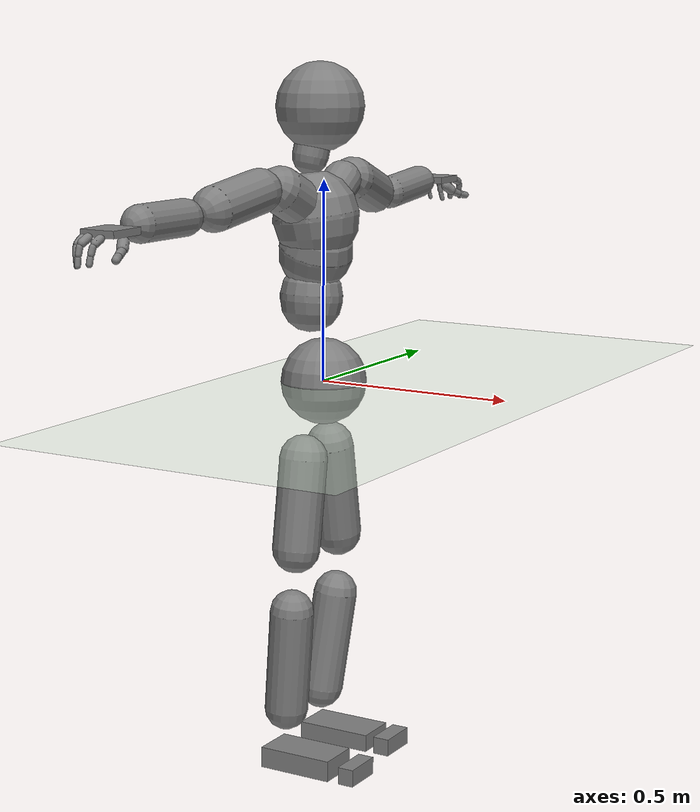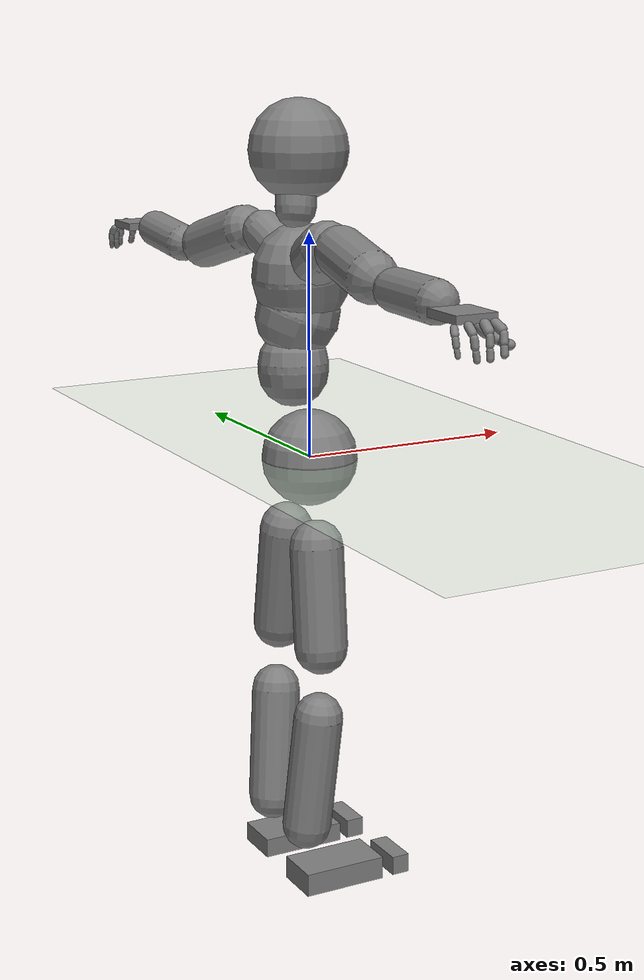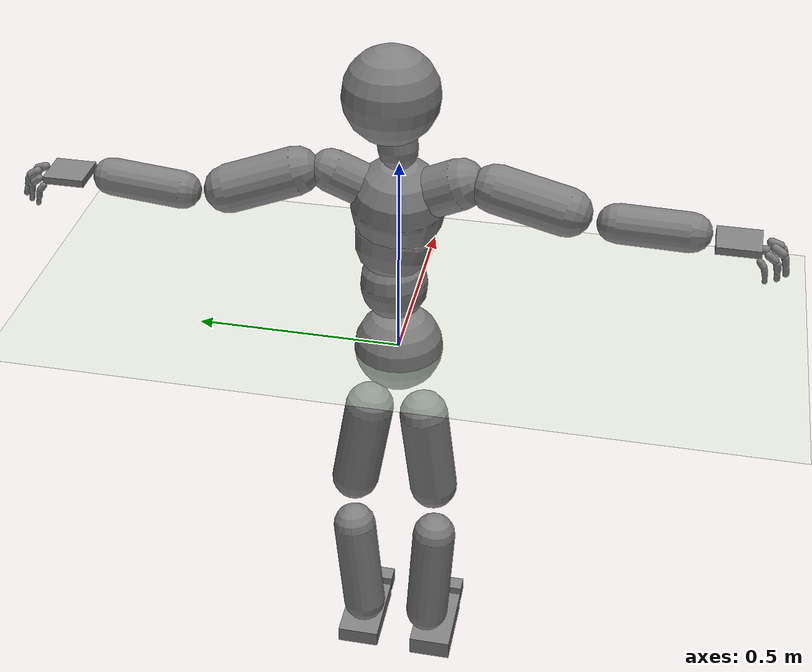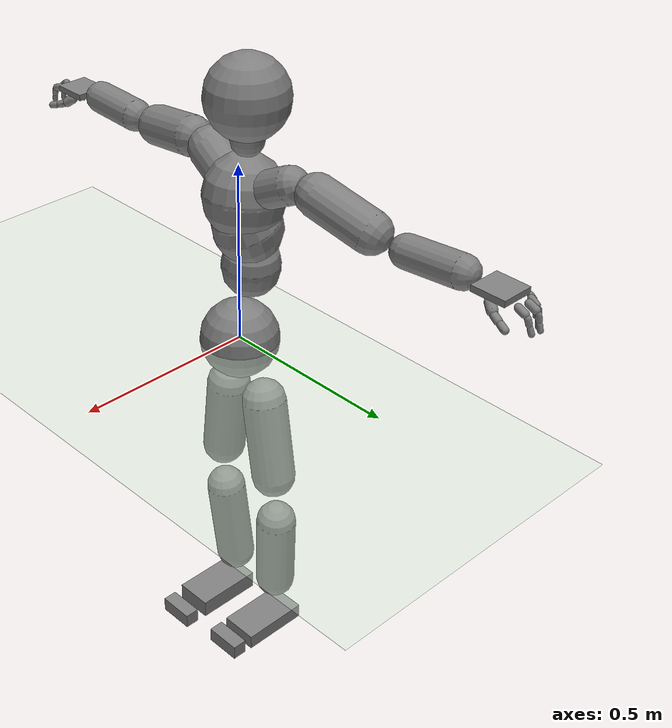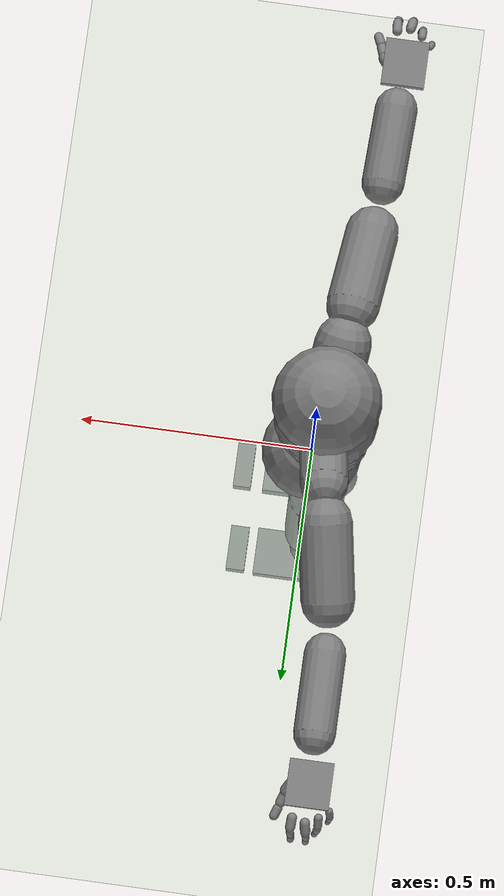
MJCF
<mujoco model="humanoid">
  <compiler coordinate="local" />
  <statistic extent="2" center="0 0 1" />
  <option timestep="0.00555" />
  <default>
    <motor ctrlrange="-1 1" ctrllimited="true" />
    <geom type="capsule" condim="1" friction="1.0 0.05 0.05" solimp=".9 .99 .003" solref=".015 1" />
    <joint type="hinge" damping="0.1" stiffness="5" armature=".007" limited="true" solimplimit="0 .99 .01" />
    <site size=".04" group="3" />
    <default class="force-torque">
      <site type="box" size=".01 .01 .02" rgba="1 0 0 1" />
    </default>
    <default class="touch">
      <site type="capsule" rgba="0 0 1 .3" />
    </default>
  </default>
  <asset>
    <texture type="skybox" builtin="gradient" rgb1=".4 .5 .6" rgb2="0 0 0" width="100" height="100" />
    <texture builtin="flat" height="1278" mark="cross" markrgb="1 1 1" name="texgeom" random="0.01" rgb1="0.8 0.6 0.4" rgb2="0.8 0.6 0.4" type="cube" width="127" />
    <texture builtin="checker" height="100" name="texplane" rgb1="0 0 0" rgb2="0.8 0.8 0.8" type="2d" width="100" />
    <material name="MatPlane" reflectance="0.5" shininess="1" specular="1" texrepeat="60 60" texture="texplane" />
    <material name="geom" texture="texgeom" texuniform="true" />
  </asset>
  <worldbody>
    <light cutoff="100" diffuse="1 1 1" dir="-0 0 -1.3" directional="true" exponent="1" pos="0 0 1.3" specular=".1 .1 .1" />
    <geom conaffinity="1" condim="3" name="floor" pos="0 0 0" rgba="0.8 0.9 0.8 1" size="100 100 .2" type="plane" material="MatPlane" />
    <body name="Pelvis" pos="0 0 0">
      <inertial pos="0.000000 0.000000 0.000000" quat="1.00000000 0.00000000 0.00000000 0.00000000" mass="5.276669" diaginertia="0.024618828 0.024618828 0.024618828" /><freejoint name="Pelvis" />
      <geom type="sphere" contype="1" conaffinity="1" density="1000" size="0.1080" pos="0.0000 0.0000 0.0000" name="Pelvis" />
      <body name="L_Hip" pos="-0.0238 0.0559 -0.1007">
        <inertial pos="0.000750 0.032900 -0.198800" quat="0.99665101 0.08173780 -0.00173257 -0.00163962" mass="7.652941" diaginertia="0.074756704 0.074756704 0.013434835" /><joint name="L_Hip_x" type="hinge" pos="0 0 0" axis="1 0 0" stiffness="800" damping="80" armature="0.02" range="-180.0000 180.0000" />
        <joint name="L_Hip_y" type="hinge" pos="0 0 0" axis="0 1 0" stiffness="800" damping="80" armature="0.02" range="-180.0000 180.0000" />
        <joint name="L_Hip_z" type="hinge" pos="0 0 0" axis="0 0 1" stiffness="800" damping="80" armature="0.02" range="-180.0000 180.0000" />
        <geom type="capsule" contype="1" conaffinity="1" density="2040.816327" fromto="0.0003 0.0132 -0.0795 0.0012 0.0526 -0.3181" size="0.0608" />
        <body name="L_Knee" pos="0.0015 0.0658 -0.3977">
          <inertial pos="-0.021200 -0.024450 -0.212900" quat="0.99702270 -0.05769252 0.04834011 -0.01674953" mass="4.082452" diaginertia="0.041568097 0.041568097 0.006157164" /><joint name="L_Knee_x" type="hinge" pos="0 0 0" axis="1 0 0" stiffness="800" damping="80" armature="0.02" range="-180.0000 180.0000" />
          <joint name="L_Knee_y" type="hinge" pos="0 0 0" axis="0 1 0" stiffness="800" damping="80" armature="0.02" range="-180.0000 180.0000" />
          <joint name="L_Knee_z" type="hinge" pos="0 0 0" axis="0 0 1" stiffness="800" damping="80" armature="0.02" range="-180.0000 180.0000" />
          <geom type="capsule" contype="1" conaffinity="1" density="1234.567901" fromto="-0.0085 -0.0098 -0.0852 -0.0339 -0.0391 -0.3406" size="0.0562" />
          <body name="L_Ankle" pos="-0.0424 -0.0489 -0.4258">
            <inertial pos="0.069900 0.022500 -0.031000" quat="1.00000000 0.00000000 0.00000000 0.00000000" mass="0.943325" diaginertia="0.001087547 0.003167315 0.003947709" /><joint name="L_Ankle_x" type="hinge" pos="0 0 0" axis="1 0 0" stiffness="800" damping="80" armature="0.02" range="-180.0000 180.0000" />
            <joint name="L_Ankle_y" type="hinge" pos="0 0 0" axis="0 1 0" stiffness="800" damping="80" armature="0.02" range="-180.0000 180.0000" />
            <joint name="L_Ankle_z" type="hinge" pos="0 0 0" axis="0 0 1" stiffness="800" damping="80" armature="0.02" range="-180.0000 180.0000" />
            <geom type="box" contype="1" conaffinity="1" density="1000" pos="0.0699 0.0225 -0.0310" size="0.0979 0.0545 0.0221" quat="1.0000 0.0000 0.0000 0.0000" />
            <body name="L_Toe" pos="0.1399 0.045 -0.062">
              <inertial pos="0.070900 -0.022500 0.031000" quat="1.00000000 0.00000000 0.00000000 0.00000000" mass="0.199346" diaginertia="0.000213516 0.000063456 0.000212064" /><joint name="L_Toe_x" type="hinge" pos="0 0 0" axis="1 0 0" stiffness="500" damping="50" armature="0.02" range="-180.0000 180.0000" />
              <joint name="L_Toe_y" type="hinge" pos="0 0 0" axis="0 1 0" stiffness="500" damping="50" armature="0.02" range="-180.0000 180.0000" />
              <joint name="L_Toe_z" type="hinge" pos="0 0 0" axis="0 0 1" stiffness="500" damping="50" armature="0.02" range="-180.0000 180.0000" />
              <geom type="box" contype="1" conaffinity="1" density="1000" pos="0.0709 -0.0225 0.0310" size="0.0216 0.0522 0.0221" quat="1.0000 0.0000 0.0000 0.0000" />
            </body>
          </body>
        </body>
      </body>
      <body name="R_Hip" pos="-0.0169 -0.0579 -0.1123">
        <inertial pos="-0.003450 -0.024450 -0.189850" quat="0.99789678 -0.06382176 0.00935047 0.00643171" mass="7.313373" diaginertia="0.066630748 0.066630748 0.012730026" /><joint name="R_Hip_x" type="hinge" pos="0 0 0" axis="1 0 0" stiffness="800" damping="80" armature="0.02" range="-180.0000 180.0000" />
        <joint name="R_Hip_y" type="hinge" pos="0 0 0" axis="0 1 0" stiffness="800" damping="80" armature="0.02" range="-180.0000 180.0000" />
        <joint name="R_Hip_z" type="hinge" pos="0 0 0" axis="0 0 1" stiffness="800" damping="80" armature="0.02" range="-180.0000 180.0000" />
        <geom type="capsule" contype="1" conaffinity="1" density="2040.816327" fromto="-0.0014 -0.0098 -0.0759 -0.0055 -0.0391 -0.3038" size="0.0606" />
        <body name="R_Knee" pos="-0.0069 -0.0489 -0.3797">
          <inertial pos="-0.020250 0.009500 -0.219750" quat="0.99841571 0.02264744 0.04535726 0.02441054" mass="4.115768" diaginertia="0.043332519 0.043332519 0.006148227" /><joint name="R_Knee_x" type="hinge" pos="0 0 0" axis="1 0 0" stiffness="800" damping="80" armature="0.02" range="-180.0000 180.0000" />
          <joint name="R_Knee_y" type="hinge" pos="0 0 0" axis="0 1 0" stiffness="800" damping="80" armature="0.02" range="-180.0000 180.0000" />
          <joint name="R_Knee_z" type="hinge" pos="0 0 0" axis="0 0 1" stiffness="800" damping="80" armature="0.02" range="-180.0000 180.0000" />
          <geom type="capsule" contype="1" conaffinity="1" density="1234.567901" fromto="-0.0081 0.0038 -0.0879 -0.0324 0.0152 -0.3516" size="0.0559" />
          <body name="R_Ankle" pos="-0.0405 0.0191 -0.4396">
            <inertial pos="0.073400 -0.017600 -0.030400" quat="1.00000000 0.00000000 0.00000000 0.00000000" mass="1.135405" diaginertia="0.001391935 0.003895185 0.004751541" /><joint name="R_Ankle_x" type="hinge" pos="0 0 0" axis="1 0 0" stiffness="800" damping="80" armature="0.02" range="-180.0000 180.0000" />
            <joint name="R_Ankle_y" type="hinge" pos="0 0 0" axis="0 1 0" stiffness="800" damping="80" armature="0.02" range="-180.0000 180.0000" />
            <joint name="R_Ankle_z" type="hinge" pos="0 0 0" axis="0 0 1" stiffness="800" damping="80" armature="0.02" range="-180.0000 180.0000" />
            <geom type="box" contype="1" conaffinity="1" density="1000" pos="0.0734 -0.0176 -0.0304" size="0.0979 0.0545 0.0266" quat="1.0000 0.0000 0.0000 0.0000" />
            <body name="R_Toe" pos="0.1468 -0.0352 -0.0608">
              <inertial pos="0.074400 0.017600 0.025900" quat="1.00000000 0.00000000 0.00000000 0.00000000" mass="0.193808" diaginertia="0.000207585 0.000060042 0.000204522" /><joint name="R_Toe_x" type="hinge" pos="0 0 0" axis="1 0 0" stiffness="500" damping="50" armature="0.02" range="-180.0000 180.0000" />
              <joint name="R_Toe_y" type="hinge" pos="0 0 0" axis="0 1 0" stiffness="500" damping="50" armature="0.02" range="-180.0000 180.0000" />
              <joint name="R_Toe_z" type="hinge" pos="0 0 0" axis="0 0 1" stiffness="500" damping="50" armature="0.02" range="-180.0000 180.0000" />
              <geom type="box" contype="1" conaffinity="1" density="1000" pos="0.0744 0.0176 0.0259" size="0.021 0.0522 0.0221" quat="1.0000 0.0000 0.0000 0.0000" />
            </body>
          </body>
        </body>
      </body>
      <body name="Torso" pos="-0.0392 -0.0024 0.1234">
        <inertial pos="0.001150 0.006200 0.084000" quat="0.99930059 -0.03557892 0.00915886 0.00696995" mass="2.925405" diaginertia="0.008313251 0.008313251 0.007498259" /><joint name="Torso_x" type="hinge" pos="0 0 0" axis="1 0 0" stiffness="1000" damping="100" armature="0.02" range="-180.0000 180.0000" />
        <joint name="Torso_y" type="hinge" pos="0 0 0" axis="0 1 0" stiffness="1000" damping="100" armature="0.02" range="-180.0000 180.0000" />
        <joint name="Torso_z" type="hinge" pos="0 0 0" axis="0 0 1" stiffness="1000" damping="100" armature="0.02" range="-180.0000 180.0000" />
        <geom type="capsule" contype="1" conaffinity="1" density="1234.567901" fromto="0.0010 0.0056 0.0756 0.0013 0.0068 0.0924" size="0.0787" />
        <body name="Spine" pos="0.0023 0.0124 0.168">
          <inertial pos="0.010800 -0.005100 0.031550" quat="0.97656529 0.05550839 0.17345208 -0.11468837" mass="4.385958" diaginertia="0.015907059 0.015907059 0.015369429" /><joint name="Spine_x" type="hinge" pos="0 0 0" axis="1 0 0" stiffness="1000" damping="100" armature="0.02" range="-180.0000 180.0000" />
          <joint name="Spine_y" type="hinge" pos="0 0 0" axis="0 1 0" stiffness="1000" damping="100" armature="0.02" range="-180.0000 180.0000" />
          <joint name="Spine_z" type="hinge" pos="0 0 0" axis="0 0 1" stiffness="1000" damping="100" armature="0.02" range="-180.0000 180.0000" />
          <geom type="capsule" contype="1" conaffinity="1" density="1234.567901" fromto="0.0097 -0.0046 0.0284 0.0119 -0.0056 0.0347" size="0.093" />
          <body name="Chest" pos="0.0216 -0.0102 0.0631">
            <inertial pos="-0.006200 -0.002250 0.055100" quat="0.99531392 0.02671561 -0.05236273 -0.07677638" mass="7.072723" diaginertia="0.035457192 0.035457192 0.033773072" /><joint name="Chest_x" type="hinge" pos="0 0 0" axis="1 0 0" stiffness="1000" damping="100" armature="0.02" range="-180.0000 180.0000" />
            <joint name="Chest_y" type="hinge" pos="0 0 0" axis="0 1 0" stiffness="1000" damping="100" armature="0.02" range="-180.0000 180.0000" />
            <joint name="Chest_z" type="hinge" pos="0 0 0" axis="0 0 1" stiffness="1000" damping="100" armature="0.02" range="-180.0000 180.0000" />
            <geom type="capsule" contype="1" conaffinity="1" density="1234.567901" fromto="-0.0056 -0.0020 0.0496 -0.0068 -0.0025 0.0606" size="0.1083" />
            <body name="Neck" pos="-0.0248 -0.0095 0.1718">
              <inertial pos="0.010650 0.011950 0.075250" quat="0.98959010 -0.08440299 0.06104934 -0.09930025" mass="0.979254" diaginertia="0.002468423 0.002468423 0.000921300" /><joint name="Neck_x" type="hinge" pos="0 0 0" axis="1 0 0" stiffness="500" damping="50" armature="0.02" range="-180.0000 180.0000" />
              <joint name="Neck_y" type="hinge" pos="0 0 0" axis="0 1 0" stiffness="500" damping="50" armature="0.02" range="-180.0000 180.0000" />
              <joint name="Neck_z" type="hinge" pos="0 0 0" axis="0 0 1" stiffness="500" damping="50" armature="0.02" range="-180.0000 180.0000" />
              <geom type="capsule" contype="1" conaffinity="1" density="1000" fromto="0.0043 0.0048 0.0301 0.0170 0.0191 0.1204" size="0.0452" />
              <body name="Head" pos="0.0213 0.0239 0.1505">
                <inertial pos="0.000000 0.000000 0.000000" quat="1.00000000 0.00000000 0.00000000 0.00000000" mass="5.575280" diaginertia="0.026984354 0.026984354 0.026984354" /><joint name="Head_x" type="hinge" pos="0 0 0" axis="1 0 0" stiffness="500" damping="50" armature="0.02" range="-180.0000 180.0000" />
                <joint name="Head_y" type="hinge" pos="0 0 0" axis="0 1 0" stiffness="500" damping="50" armature="0.02" range="-180.0000 180.0000" />
                <joint name="Head_z" type="hinge" pos="0 0 0" axis="0 0 1" stiffness="500" damping="50" armature="0.02" range="-180.0000 180.0000" />
                <geom type="sphere" contype="1" conaffinity="1" density="1000" size="0.1100" pos="0.0000 0.0000 0.0000" name="Head" />
              </body>
            </body>
            <body name="L_Thorax" pos="-0.0042 0.0404 0.0791">
              <inertial pos="-0.009750 0.066950 0.033400" quat="0.97137479 0.22854379 -0.01484034 0.06307558" mass="1.192714" diaginertia="0.003245418 0.001327450 0.003245418" /><joint name="L_Thorax_x" type="hinge" pos="0 0 0" axis="1 0 0" stiffness="500" damping="50" armature="0.02" range="-180.0000 180.0000" />
              <joint name="L_Thorax_y" type="hinge" pos="0 0 0" axis="0 1 0" stiffness="500" damping="50" armature="0.02" range="-180.0000 180.0000" />
              <joint name="L_Thorax_z" type="hinge" pos="0 0 0" axis="0 0 1" stiffness="500" damping="50" armature="0.02" range="-180.0000 180.0000" />
              <geom type="capsule" contype="1" conaffinity="1" density="1000" fromto="-0.0039 0.0268 0.0134 -0.0156 0.1071 0.0534" size="0.0493" />
              <body name="L_Shoulder" pos="-0.0195 0.1339 0.0668">
                <inertial pos="-0.022000 0.126800 -0.040050" quat="0.98457061 -0.14818286 -0.03144631 0.08759958" mass="2.291221" diaginertia="0.012671966 0.003318926 0.012671966" /><joint name="L_Shoulder_x" type="hinge" pos="0 0 0" axis="1 0 0" stiffness="500" damping="50" armature="0.02" range="-180.0000 180.0000" />
                <joint name="L_Shoulder_y" type="hinge" pos="0 0 0" axis="0 1 0" stiffness="500" damping="50" armature="0.02" range="-180.0000 180.0000" />
                <joint name="L_Shoulder_z" type="hinge" pos="0 0 0" axis="0 0 1" stiffness="500" damping="50" armature="0.02" range="-180.0000 180.0000" />
                <geom type="capsule" contype="1" conaffinity="1" density="1000" fromto="-0.0088 0.0507 -0.0160 -0.0352 0.2029 -0.0641" size="0.0556" />
                <body name="L_Elbow" pos="-0.044 0.2536 -0.0802">
                  <inertial pos="0.000050 0.137750 0.013400" quat="0.99883632 0.04822784 0.00001452 -0.00030072" mass="1.284143" diaginertia="0.006014707 0.001116012 0.006014707" /><joint name="L_Elbow_x" type="hinge" pos="0 0 0" axis="1 0 0" stiffness="500" damping="50" armature="0.02" range="-180.0000 180.0000" />
                  <joint name="L_Elbow_y" type="hinge" pos="0 0 0" axis="0 1 0" stiffness="500" damping="50" armature="0.02" range="-180.0000 180.0000" />
                  <joint name="L_Elbow_z" type="hinge" pos="0 0 0" axis="0 0 1" stiffness="500" damping="50" armature="0.02" range="-180.0000 180.0000" />
                  <geom type="capsule" contype="1" conaffinity="1" density="1000" fromto="0.0000 0.0551 0.0054 0.0001 0.2204 0.0214" size="0.0428" />
                  <body name="L_Wrist" pos="0.0001 0.2755 0.0268">
                    <inertial pos="-0.003100 0.046700 -0.005900" quat="1.00000000 0.00000000 0.00000000 0.00000000" mass="0.144704" diaginertia="0.000112314 0.000100294 0.000205638" /><joint name="L_Wrist_x" type="hinge" pos="0 0 0" axis="1 0 0" stiffness="300" damping="30" armature="0.02" range="-180.0000 180.0000" />
                    <joint name="L_Wrist_y" type="hinge" pos="0 0 0" axis="0 1 0" stiffness="300" damping="30" armature="0.02" range="-180.0000 180.0000" />
                    <joint name="L_Wrist_z" type="hinge" pos="0 0 0" axis="0 0 1" stiffness="300" damping="30" armature="0.02" range="-180.0000 180.0000" />
                    <geom type="box" contype="1" conaffinity="1" density="1000" pos="-0.0031 0.0467 -0.0059" size="0.0448 0.0475 0.0085" quat="1.0000 0.0000 0.0000 0.0000" />
                    <body name="L_Index1" pos="0.0221 0.11 -0.0088">
                      <inertial pos="0.000850 0.016050 -0.006300" quat="0.98211603 -0.18640414 -0.00493916 -0.02602316" mass="0.010714" diaginertia="0.000001343 0.000000494 0.000001343" /><joint name="L_Index1_x" type="hinge" pos="0 0 0" axis="1 0 0" stiffness="100" damping="10" armature="0.02" range="-180.0000 180.0000" />
                      <joint name="L_Index1_y" type="hinge" pos="0 0 0" axis="0 1 0" stiffness="100" damping="10" armature="0.02" range="-180.0000 180.0000" />
                      <joint name="L_Index1_z" type="hinge" pos="0 0 0" axis="0 0 1" stiffness="100" damping="10" armature="0.02" range="-180.0000 180.0000" />
                      <geom type="capsule" contype="1" conaffinity="1" density="1000" fromto="0.0003 0.0064 -0.0025 0.0014 0.0257 -0.0101" size="0.01" />
                      <body name="L_Index2" pos="0.0017 0.0322 -0.0126">
                        <inertial pos="-0.001550 0.003300 -0.011550" quat="0.95420075 0.15109976 0.02759289 0.25672637" mass="0.005078" diaginertia="0.000000362 0.000000362 0.000000149" /><joint name="L_Index2_x" type="hinge" pos="0 0 0" axis="1 0 0" stiffness="100" damping="10" armature="0.02" range="-180.0000 180.0000" />
                        <joint name="L_Index2_y" type="hinge" pos="0 0 0" axis="0 1 0" stiffness="100" damping="10" armature="0.02" range="-180.0000 180.0000" />
                        <joint name="L_Index2_z" type="hinge" pos="0 0 0" axis="0 0 1" stiffness="100" damping="10" armature="0.02" range="-180.0000 180.0000" />
                        <geom type="capsule" contype="1" conaffinity="1" density="1000" fromto="-0.0006 0.0013 -0.0046 -0.0025 0.0053 -0.0185" size="0.008" />
                        <body name="L_Index3" pos="-0.0031 0.0067 -0.0231">
                          <inertial pos="-0.000550 0.004300 -0.010550" quat="0.98041802 0.19201982 0.03183941 -0.02991902" mass="0.003930" diaginertia="0.000000240 0.000000240 0.000000096" /><joint name="L_Index3_x" type="hinge" pos="0 0 0" axis="1 0 0" stiffness="100" damping="10" armature="0.02" range="-180.0000 180.0000" />
                          <joint name="L_Index3_y" type="hinge" pos="0 0 0" axis="0 1 0" stiffness="100" damping="10" armature="0.02" range="-180.0000 180.0000" />
                          <joint name="L_Index3_z" type="hinge" pos="0 0 0" axis="0 0 1" stiffness="100" damping="10" armature="0.02" range="-180.0000 180.0000" />
                          <geom type="capsule" contype="1" conaffinity="1" density="1000" fromto="-0.0002 0.0017 -0.0042 -0.0009 0.0069 -0.0169" size="0.0073" />
                        </body>
                      </body>
                    </body>
                    <body name="L_Middle1" pos="-0.0036 0.1182 -0.0057">
                      <inertial pos="-0.002500 0.014100 -0.008250" quat="0.96268953 -0.25673027 -0.01909307 0.08338997" mass="0.010950" diaginertia="0.000001347 0.000000523 0.000001347" /><joint name="L_Middle1_x" type="hinge" pos="0 0 0" axis="1 0 0" stiffness="100" damping="10" armature="0.02" range="-180.0000 180.0000" />
                      <joint name="L_Middle1_y" type="hinge" pos="0 0 0" axis="0 1 0" stiffness="100" damping="10" armature="0.02" range="-180.0000 180.0000" />
                      <joint name="L_Middle1_z" type="hinge" pos="0 0 0" axis="0 0 1" stiffness="100" damping="10" armature="0.02" range="-180.0000 180.0000" />
                      <geom type="capsule" contype="1" conaffinity="1" density="1000" fromto="-0.0010 0.0056 -0.0033 -0.0040 0.0226 -0.0132" size="0.0102" />
                      <body name="L_Middle2" pos="-0.005 0.0282 -0.0165">
                        <inertial pos="-0.001050 0.002450 -0.012550" quat="0.99451851 0.09384291 0.04373502 -0.01461784" mass="0.004639" diaginertia="0.000000329 0.000000329 0.000000123" /><joint name="L_Middle2_x" type="hinge" pos="0 0 0" axis="1 0 0" stiffness="100" damping="10" armature="0.02" range="-180.0000 180.0000" />
                        <joint name="L_Middle2_y" type="hinge" pos="0 0 0" axis="0 1 0" stiffness="100" damping="10" armature="0.02" range="-180.0000 180.0000" />
                        <joint name="L_Middle2_z" type="hinge" pos="0 0 0" axis="0 0 1" stiffness="100" damping="10" armature="0.02" range="-180.0000 180.0000" />
                        <geom type="capsule" contype="1" conaffinity="1" density="1000" fromto="-0.0004 0.0010 -0.0050 -0.0017 0.0039 -0.0201" size="0.0076" />
                        <body name="L_Middle3" pos="-0.0021 0.0048 -0.0251">
                          <inertial pos="-0.000050 0.003450 -0.011550" quat="0.98972777 0.14292316 0.00341468 0.00049310" mass="0.003544" diaginertia="0.000000214 0.000000214 0.000000078" /><joint name="L_Middle3_x" type="hinge" pos="0 0 0" axis="1 0 0" stiffness="100" damping="10" armature="0.02" range="-180.0000 180.0000" />
                          <joint name="L_Middle3_y" type="hinge" pos="0 0 0" axis="0 1 0" stiffness="100" damping="10" armature="0.02" range="-180.0000 180.0000" />
                          <joint name="L_Middle3_z" type="hinge" pos="0 0 0" axis="0 0 1" stiffness="100" damping="10" armature="0.02" range="-180.0000 180.0000" />
                          <geom type="capsule" contype="1" conaffinity="1" density="1000" fromto="-0.0000 0.0014 -0.0046 -0.0001 0.0055 -0.0185" size="0.0069" />
                        </body>
                      </body>
                    </body>
                    <body name="L_Pinky1" pos="-0.0484 0.0907 -0.0149">
                      <inertial pos="-0.002450 0.006600 -0.008050" quat="0.93098043 0.34176742 0.08560179 0.09561804" mass="0.004180" diaginertia="0.000000253 0.000000253 0.000000110" /><joint name="L_Pinky1_x" type="hinge" pos="0 0 0" axis="1 0 0" stiffness="100" damping="10" armature="0.02" range="-180.0000 180.0000" />
                      <joint name="L_Pinky1_y" type="hinge" pos="0 0 0" axis="0 1 0" stiffness="100" damping="10" armature="0.02" range="-180.0000 180.0000" />
                      <joint name="L_Pinky1_z" type="hinge" pos="0 0 0" axis="0 0 1" stiffness="100" damping="10" armature="0.02" range="-180.0000 180.0000" />
                      <geom type="capsule" contype="1" conaffinity="1" density="1000" fromto="-0.0010 0.0026 -0.0032 -0.0039 0.0106 -0.0129" size="0.0076" />
                      <body name="L_Pinky2" pos="-0.0049 0.0132 -0.0161">
                        <inertial pos="0.000500 0.001950 -0.010100" quat="0.99537270 0.09300693 -0.02403865 -0.00224615" mass="0.003013" diaginertia="0.000000153 0.000000153 0.000000062" /><joint name="L_Pinky2_x" type="hinge" pos="0 0 0" axis="1 0 0" stiffness="100" damping="10" armature="0.02" range="-180.0000 180.0000" />
                        <joint name="L_Pinky2_y" type="hinge" pos="0 0 0" axis="0 1 0" stiffness="100" damping="10" armature="0.02" range="-180.0000 180.0000" />
                        <joint name="L_Pinky2_z" type="hinge" pos="0 0 0" axis="0 0 1" stiffness="100" damping="10" armature="0.02" range="-180.0000 180.0000" />
                        <geom type="capsule" contype="1" conaffinity="1" density="1000" fromto="0.0002 0.0008 -0.0040 0.0008 0.0031 -0.0162" size="0.0067" />
                        <body name="L_Pinky3" pos="0.0009 0.0039 -0.0202">
                          <inertial pos="0.001500 0.002950 -0.009100" quat="0.90703268 0.17049154 -0.01260351 -0.38479282" mass="0.001730" diaginertia="0.000000066 0.000000066 0.000000023" /><joint name="L_Pinky3_x" type="hinge" pos="0 0 0" axis="1 0 0" stiffness="100" damping="10" armature="0.02" range="-180.0000 180.0000" />
                          <joint name="L_Pinky3_y" type="hinge" pos="0 0 0" axis="0 1 0" stiffness="100" damping="10" armature="0.02" range="-180.0000 180.0000" />
                          <joint name="L_Pinky3_z" type="hinge" pos="0 0 0" axis="0 0 1" stiffness="100" damping="10" armature="0.02" range="-180.0000 180.0000" />
                          <geom type="capsule" contype="1" conaffinity="1" density="1000" fromto="0.0006 0.0012 -0.0036 0.0024 0.0047 -0.0146" size="0.0054" />
                        </body>
                      </body>
                    </body>
                    <body name="L_Ring1" pos="-0.0298 0.1052 -0.0088">
                      <inertial pos="-0.000700 0.012450 -0.009000" quat="0.95094744 -0.30793347 -0.01242815 0.02686034" mass="0.006944" diaginertia="0.000000663 0.000000237 0.000000663" /><joint name="L_Ring1_x" type="hinge" pos="0 0 0" axis="1 0 0" stiffness="100" damping="10" armature="0.02" range="-180.0000 180.0000" />
                      <joint name="L_Ring1_y" type="hinge" pos="0 0 0" axis="0 1 0" stiffness="100" damping="10" armature="0.02" range="-180.0000 180.0000" />
                      <joint name="L_Ring1_z" type="hinge" pos="0 0 0" axis="0 0 1" stiffness="100" damping="10" armature="0.02" range="-180.0000 180.0000" />
                      <geom type="capsule" contype="1" conaffinity="1" density="1000" fromto="-0.0003 0.0050 -0.0036 -0.0011 0.0199 -0.0144" size="0.0086" />
                      <body name="L_Ring2" pos="-0.0014 0.0249 -0.018">
                        <inertial pos="0.000800 0.001950 -0.012550" quat="0.99544418 0.07370747 -0.03639161 0.04830890" mass="0.004913" diaginertia="0.000000355 0.000000355 0.000000137" /><joint name="L_Ring2_x" type="hinge" pos="0 0 0" axis="1 0 0" stiffness="100" damping="10" armature="0.02" range="-180.0000 180.0000" />
                        <joint name="L_Ring2_y" type="hinge" pos="0 0 0" axis="0 1 0" stiffness="100" damping="10" armature="0.02" range="-180.0000 180.0000" />
                        <joint name="L_Ring2_z" type="hinge" pos="0 0 0" axis="0 0 1" stiffness="100" damping="10" armature="0.02" range="-180.0000 180.0000" />
                        <geom type="capsule" contype="1" conaffinity="1" density="1000" fromto="0.0003 0.0008 -0.0050 0.0013 0.0031 -0.0201" size="0.0078" />
                        <body name="L_Ring3" pos="0.0017 0.0039 -0.0252">
                          <inertial pos="0.001800 0.002950 -0.011550" quat="0.92819588 0.14095861 -0.02961937 -0.34308275" mass="0.002964" diaginertia="0.000000166 0.000000166 0.000000056" /><joint name="L_Ring3_x" type="hinge" pos="0 0 0" axis="1 0 0" stiffness="100" damping="10" armature="0.02" range="-180.0000 180.0000" />
                          <joint name="L_Ring3_y" type="hinge" pos="0 0 0" axis="0 1 0" stiffness="100" damping="10" armature="0.02" range="-180.0000 180.0000" />
                          <joint name="L_Ring3_z" type="hinge" pos="0 0 0" axis="0 0 1" stiffness="100" damping="10" armature="0.02" range="-180.0000 180.0000" />
                          <geom type="capsule" contype="1" conaffinity="1" density="1000" fromto="0.0007 0.0012 -0.0046 0.0029 0.0047 -0.0185" size="0.0064" />
                        </body>
                      </body>
                    </body>
                    <body name="L_Thumb1" pos="0.0288 0.0433 -0.0205">
                      <inertial pos="0.007000 0.011600 -0.009650" quat="0.91937532 -0.32919000 -0.07260038 -0.20276132" mass="0.021740" diaginertia="0.000003722 0.000001793 0.000003722" /><joint name="L_Thumb1_x" type="hinge" pos="0 0 0" axis="1 0 0" stiffness="100" damping="10" armature="0.02" range="-180.0000 180.0000" />
                      <joint name="L_Thumb1_y" type="hinge" pos="0 0 0" axis="0 1 0" stiffness="100" damping="10" armature="0.02" range="-180.0000 180.0000" />
                      <joint name="L_Thumb1_z" type="hinge" pos="0 0 0" axis="0 0 1" stiffness="100" damping="10" armature="0.02" range="-180.0000 180.0000" />
                      <geom type="capsule" contype="1" conaffinity="1" density="1000" fromto="0.0028 0.0046 -0.0039 0.0112 0.0186 -0.0154" size="0.0135" />
                      <body name="L_Thumb2" pos="0.014 0.0232 -0.0193">
                        <inertial pos="0.004000 0.012750 -0.004500" quat="0.93269597 -0.11360443 0.28671072 -0.18700058" mass="0.010217" diaginertia="0.000001105 0.000000493 0.000001105" /><joint name="L_Thumb2_x" type="hinge" pos="0 0 0" axis="1 0 0" stiffness="100" damping="10" armature="0.02" range="-180.0000 180.0000" />
                        <joint name="L_Thumb2_y" type="hinge" pos="0 0 0" axis="0 1 0" stiffness="100" damping="10" armature="0.02" range="-180.0000 180.0000" />
                        <joint name="L_Thumb2_z" type="hinge" pos="0 0 0" axis="0 0 1" stiffness="100" damping="10" armature="0.02" range="-180.0000 180.0000" />
                        <geom type="capsule" contype="1" conaffinity="1" density="1000" fromto="0.0016 0.0051 -0.0018 0.0064 0.0204 -0.0072" size="0.0103" />
                        <body name="L_Thumb3" pos="0.008 0.0255 -0.0089">
                          <inertial pos="0.005000 0.013750 -0.003500" quat="0.97804046 -0.12252433 -0.02095712 -0.16728849" mass="0.008710" diaginertia="0.000000908 0.000000361 0.000000908" /><joint name="L_Thumb3_x" type="hinge" pos="0 0 0" axis="1 0 0" stiffness="100" damping="10" armature="0.02" range="-180.0000 180.0000" />
                          <joint name="L_Thumb3_y" type="hinge" pos="0 0 0" axis="0 1 0" stiffness="100" damping="10" armature="0.02" range="-180.0000 180.0000" />
                          <joint name="L_Thumb3_z" type="hinge" pos="0 0 0" axis="0 0 1" stiffness="100" damping="10" armature="0.02" range="-180.0000 180.0000" />
                          <geom type="capsule" contype="1" conaffinity="1" density="1000" fromto="0.0020 0.0055 -0.0014 0.0080 0.0220 -0.0056" size="0.0095" />
                        </body>
                      </body>
                    </body>
                  </body>
                </body>
              </body>
            </body>
            <body name="R_Thorax" pos="-0.0081 -0.0443 0.0799">
              <inertial pos="-0.007600 -0.062100 0.031850" quat="0.90768010 -0.19879325 0.34389972 -0.13539225" mass="1.730826" diaginertia="0.005435743 0.002659325 0.005435743" /><joint name="R_Thorax_x" type="hinge" pos="0 0 0" axis="1 0 0" stiffness="500" damping="50" armature="0.02" range="-180.0000 180.0000" />
              <joint name="R_Thorax_y" type="hinge" pos="0 0 0" axis="0 1 0" stiffness="500" damping="50" armature="0.02" range="-180.0000 180.0000" />
              <joint name="R_Thorax_z" type="hinge" pos="0 0 0" axis="0 0 1" stiffness="500" damping="50" armature="0.02" range="-180.0000 180.0000" />
              <geom type="capsule" contype="1" conaffinity="1" density="1000" fromto="-0.0030 -0.0248 0.0127 -0.0122 -0.0994 0.0510" size="0.0583" />
              <body name="R_Shoulder" pos="-0.0152 -0.1242 0.0637">
                <inertial pos="-0.016050 -0.135400 -0.024050" quat="0.99443683 0.08779319 0.00511862 -0.05797886" mass="2.265661" diaginertia="0.012784083 0.003205457 0.012784083" /><joint name="R_Shoulder_x" type="hinge" pos="0 0 0" axis="1 0 0" stiffness="500" damping="50" armature="0.02" range="-180.0000 180.0000" />
                <joint name="R_Shoulder_y" type="hinge" pos="0 0 0" axis="0 1 0" stiffness="500" damping="50" armature="0.02" range="-180.0000 180.0000" />
                <joint name="R_Shoulder_z" type="hinge" pos="0 0 0" axis="0 0 1" stiffness="500" damping="50" armature="0.02" range="-180.0000 180.0000" />
                <geom type="capsule" contype="1" conaffinity="1" density="1000" fromto="-0.0064 -0.0542 -0.0096 -0.0257 -0.2166 -0.0385" size="0.0549" />
                <body name="R_Elbow" pos="-0.0321 -0.2708 -0.0481">
                  <inertial pos="-0.005600 -0.133550 0.000350" quat="0.99977413 -0.00155922 -0.00003306 -0.02119581" mass="1.325806" diaginertia="0.006041912 0.001209255 0.006041912" /><joint name="R_Elbow_x" type="hinge" pos="0 0 0" axis="1 0 0" stiffness="500" damping="50" armature="0.02" range="-180.0000 180.0000" />
                  <joint name="R_Elbow_y" type="hinge" pos="0 0 0" axis="0 1 0" stiffness="500" damping="50" armature="0.02" range="-180.0000 180.0000" />
                  <joint name="R_Elbow_z" type="hinge" pos="0 0 0" axis="0 0 1" stiffness="500" damping="50" armature="0.02" range="-180.0000 180.0000" />
                  <geom type="capsule" contype="1" conaffinity="1" density="1000" fromto="-0.0022 -0.0534 0.0001 -0.0090 -0.2137 0.0006" size="0.0439" />
                  <body name="R_Wrist" pos="-0.0112 -0.2671 0.0007">
                    <inertial pos="-0.003600 -0.046400 -0.007700" quat="1.00000000 0.00000000 0.00000000 0.00000000" mass="0.150413" diaginertia="0.000123108 0.000104337 0.000220029" /><joint name="R_Wrist_x" type="hinge" pos="0 0 0" axis="1 0 0" stiffness="300" damping="30" armature="0.02" range="-180.0000 180.0000" />
                    <joint name="R_Wrist_y" type="hinge" pos="0 0 0" axis="0 1 0" stiffness="300" damping="30" armature="0.02" range="-180.0000 180.0000" />
                    <joint name="R_Wrist_z" type="hinge" pos="0 0 0" axis="0 0 1" stiffness="300" damping="30" armature="0.02" range="-180.0000 180.0000" />
                    <geom type="box" contype="1" conaffinity="1" density="1000" pos="-0.0036 -0.0464 -0.0077" size="0.0448 0.0488 0.0086" quat="1.0000 0.0000 0.0000 0.0000" />
                    <body name="R_Index1" pos="0.0209 -0.1094 -0.0125">
                      <inertial pos="0.000850 -0.016050 -0.006300" quat="0.98211603 0.18640414 -0.00493916 0.02602316" mass="0.010714" diaginertia="0.000001343 0.000000494 0.000001343" /><joint name="R_Index1_x" type="hinge" pos="0 0 0" axis="1 0 0" stiffness="100" damping="10" armature="0.02" range="-180.0000 180.0000" />
                      <joint name="R_Index1_y" type="hinge" pos="0 0 0" axis="0 1 0" stiffness="100" damping="10" armature="0.02" range="-180.0000 180.0000" />
                      <joint name="R_Index1_z" type="hinge" pos="0 0 0" axis="0 0 1" stiffness="100" damping="10" armature="0.02" range="-180.0000 180.0000" />
                      <geom type="capsule" contype="1" conaffinity="1" density="1000" fromto="0.0003 -0.0064 -0.0025 0.0014 -0.0257 -0.0101" size="0.01" />
                      <body name="R_Index2" pos="0.0017 -0.0322 -0.0126">
                        <inertial pos="-0.001550 -0.003300 -0.011550" quat="0.95420075 -0.15109976 0.02759289 -0.25672637" mass="0.005078" diaginertia="0.000000362 0.000000362 0.000000149" /><joint name="R_Index2_x" type="hinge" pos="0 0 0" axis="1 0 0" stiffness="100" damping="10" armature="0.02" range="-180.0000 180.0000" />
                        <joint name="R_Index2_y" type="hinge" pos="0 0 0" axis="0 1 0" stiffness="100" damping="10" armature="0.02" range="-180.0000 180.0000" />
                        <joint name="R_Index2_z" type="hinge" pos="0 0 0" axis="0 0 1" stiffness="100" damping="10" armature="0.02" range="-180.0000 180.0000" />
                        <geom type="capsule" contype="1" conaffinity="1" density="1000" fromto="-0.0006 -0.0013 -0.0046 -0.0025 -0.0053 -0.0185" size="0.008" />
                        <body name="R_Index3" pos="-0.0031 -0.0067 -0.0231">
                          <inertial pos="-0.000550 -0.002300 -0.010550" quat="0.99376030 -0.10824855 0.02672546 -0.00291116" mass="0.003938" diaginertia="0.000000233 0.000000233 0.000000099" /><joint name="R_Index3_x" type="hinge" pos="0 0 0" axis="1 0 0" stiffness="100" damping="10" armature="0.02" range="-180.0000 180.0000" />
                          <joint name="R_Index3_y" type="hinge" pos="0 0 0" axis="0 1 0" stiffness="100" damping="10" armature="0.02" range="-180.0000 180.0000" />
                          <joint name="R_Index3_z" type="hinge" pos="0 0 0" axis="0 0 1" stiffness="100" damping="10" armature="0.02" range="-180.0000 180.0000" />
                          <geom type="capsule" contype="1" conaffinity="1" density="1000" fromto="-0.0002 -0.0009 -0.0042 -0.0009 -0.0037 -0.0169" size="0.0074" />
                        </body>
                      </body>
                    </body>
                    <body name="R_Middle1" pos="-0.0047 -0.1176 -0.0095">
                      <inertial pos="-0.002500 -0.014100 -0.008250" quat="0.96268953 0.25673027 -0.01909307 -0.08338997" mass="0.010950" diaginertia="0.000001347 0.000000523 0.000001347" /><joint name="R_Middle1_x" type="hinge" pos="0 0 0" axis="1 0 0" stiffness="100" damping="10" armature="0.02" range="-180.0000 180.0000" />
                      <joint name="R_Middle1_y" type="hinge" pos="0 0 0" axis="0 1 0" stiffness="100" damping="10" armature="0.02" range="-180.0000 180.0000" />
                      <joint name="R_Middle1_z" type="hinge" pos="0 0 0" axis="0 0 1" stiffness="100" damping="10" armature="0.02" range="-180.0000 180.0000" />
                      <geom type="capsule" contype="1" conaffinity="1" density="1000" fromto="-0.0010 -0.0056 -0.0033 -0.0040 -0.0226 -0.0132" size="0.0102" />
                      <body name="R_Middle2" pos="-0.005 -0.0282 -0.0165">
                        <inertial pos="-0.001050 -0.002450 -0.012550" quat="0.99451851 -0.09384291 0.04373502 0.01461784" mass="0.004639" diaginertia="0.000000329 0.000000329 0.000000123" /><joint name="R_Middle2_x" type="hinge" pos="0 0 0" axis="1 0 0" stiffness="100" damping="10" armature="0.02" range="-180.0000 180.0000" />
                        <joint name="R_Middle2_y" type="hinge" pos="0 0 0" axis="0 1 0" stiffness="100" damping="10" armature="0.02" range="-180.0000 180.0000" />
                        <joint name="R_Middle2_z" type="hinge" pos="0 0 0" axis="0 0 1" stiffness="100" damping="10" armature="0.02" range="-180.0000 180.0000" />
                        <geom type="capsule" contype="1" conaffinity="1" density="1000" fromto="-0.0004 -0.0010 -0.0050 -0.0017 -0.0039 -0.0201" size="0.0076" />
                        <body name="R_Middle3" pos="-0.0021 -0.0048 -0.0251">
                          <inertial pos="-0.000050 -0.001450 -0.011550" quat="0.99814292 -0.06081096 0.00356384 -0.00021712" mass="0.003592" diaginertia="0.000000213 0.000000213 0.000000081" /><joint name="R_Middle3_x" type="hinge" pos="0 0 0" axis="1 0 0" stiffness="100" damping="10" armature="0.02" range="-180.0000 180.0000" />
                          <joint name="R_Middle3_y" type="hinge" pos="0 0 0" axis="0 1 0" stiffness="100" damping="10" armature="0.02" range="-180.0000 180.0000" />
                          <joint name="R_Middle3_z" type="hinge" pos="0 0 0" axis="0 0 1" stiffness="100" damping="10" armature="0.02" range="-180.0000 180.0000" />
                          <geom type="capsule" contype="1" conaffinity="1" density="1000" fromto="-0.0000 -0.0006 -0.0046 -0.0001 -0.0023 -0.0185" size="0.007" />
                        </body>
                      </body>
                    </body>
                    <body name="R_Pinky1" pos="-0.0495 -0.0901 -0.0187">
                      <inertial pos="-0.002450 -0.006600 -0.008050" quat="0.93098043 -0.34176742 0.08560179 -0.09561804" mass="0.004180" diaginertia="0.000000253 0.000000253 0.000000110" /><joint name="R_Pinky1_x" type="hinge" pos="0 0 0" axis="1 0 0" stiffness="100" damping="10" armature="0.02" range="-180.0000 180.0000" />
                      <joint name="R_Pinky1_y" type="hinge" pos="0 0 0" axis="0 1 0" stiffness="100" damping="10" armature="0.02" range="-180.0000 180.0000" />
                      <joint name="R_Pinky1_z" type="hinge" pos="0 0 0" axis="0 0 1" stiffness="100" damping="10" armature="0.02" range="-180.0000 180.0000" />
                      <geom type="capsule" contype="1" conaffinity="1" density="1000" fromto="-0.0010 -0.0026 -0.0032 -0.0039 -0.0106 -0.0129" size="0.0076" />
                      <body name="R_Pinky2" pos="-0.0049 -0.0132 -0.0161">
                        <inertial pos="0.000500 -0.001950 -0.010100" quat="0.99537270 -0.09300693 -0.02403865 0.00224615" mass="0.003013" diaginertia="0.000000153 0.000000153 0.000000062" /><joint name="R_Pinky2_x" type="hinge" pos="0 0 0" axis="1 0 0" stiffness="100" damping="10" armature="0.02" range="-180.0000 180.0000" />
                        <joint name="R_Pinky2_y" type="hinge" pos="0 0 0" axis="0 1 0" stiffness="100" damping="10" armature="0.02" range="-180.0000 180.0000" />
                        <joint name="R_Pinky2_z" type="hinge" pos="0 0 0" axis="0 0 1" stiffness="100" damping="10" armature="0.02" range="-180.0000 180.0000" />
                        <geom type="capsule" contype="1" conaffinity="1" density="1000" fromto="0.0002 -0.0008 -0.0040 0.0008 -0.0031 -0.0162" size="0.0067" />
                        <body name="R_Pinky3" pos="0.0009 -0.0039 -0.0202">
                          <inertial pos="0.001500 -0.000950 -0.009100" quat="0.99480504 -0.04624146 -0.08252195 -0.03761364" mass="0.001686" diaginertia="0.000000062 0.000000062 0.000000023" /><joint name="R_Pinky3_x" type="hinge" pos="0 0 0" axis="1 0 0" stiffness="100" damping="10" armature="0.02" range="-180.0000 180.0000" />
                          <joint name="R_Pinky3_y" type="hinge" pos="0 0 0" axis="0 1 0" stiffness="100" damping="10" armature="0.02" range="-180.0000 180.0000" />
                          <joint name="R_Pinky3_z" type="hinge" pos="0 0 0" axis="0 0 1" stiffness="100" damping="10" armature="0.02" range="-180.0000 180.0000" />
                          <geom type="capsule" contype="1" conaffinity="1" density="1000" fromto="0.0006 -0.0004 -0.0036 0.0024 -0.0015 -0.0146" size="0.0054" />
                        </body>
                      </body>
                    </body>
                    <body name="R_Ring1" pos="-0.0309 -0.1046 -0.0125">
                      <inertial pos="-0.000700 -0.012450 -0.009000" quat="0.95094744 0.30793347 -0.01242815 -0.02686034" mass="0.006944" diaginertia="0.000000663 0.000000237 0.000000663" /><joint name="R_Ring1_x" type="hinge" pos="0 0 0" axis="1 0 0" stiffness="100" damping="10" armature="0.02" range="-180.0000 180.0000" />
                      <joint name="R_Ring1_y" type="hinge" pos="0 0 0" axis="0 1 0" stiffness="100" damping="10" armature="0.02" range="-180.0000 180.0000" />
                      <joint name="R_Ring1_z" type="hinge" pos="0 0 0" axis="0 0 1" stiffness="100" damping="10" armature="0.02" range="-180.0000 180.0000" />
                      <geom type="capsule" contype="1" conaffinity="1" density="1000" fromto="-0.0003 -0.0050 -0.0036 -0.0011 -0.0199 -0.0144" size="0.0086" />
                      <body name="R_Ring2" pos="-0.0014 -0.0249 -0.018">
                        <inertial pos="0.000800 -0.001950 -0.012550" quat="0.99544418 -0.07370747 -0.03639161 -0.04830890" mass="0.004913" diaginertia="0.000000355 0.000000355 0.000000137" /><joint name="R_Ring2_x" type="hinge" pos="0 0 0" axis="1 0 0" stiffness="100" damping="10" armature="0.02" range="-180.0000 180.0000" />
                        <joint name="R_Ring2_y" type="hinge" pos="0 0 0" axis="0 1 0" stiffness="100" damping="10" armature="0.02" range="-180.0000 180.0000" />
                        <joint name="R_Ring2_z" type="hinge" pos="0 0 0" axis="0 0 1" stiffness="100" damping="10" armature="0.02" range="-180.0000 180.0000" />
                        <geom type="capsule" contype="1" conaffinity="1" density="1000" fromto="0.0003 -0.0008 -0.0050 0.0013 -0.0031 -0.0201" size="0.0078" />
                        <body name="R_Ring3" pos="0.0017 -0.0039 -0.0252">
                          <inertial pos="0.001800 -0.000950 -0.011550" quat="0.99542167 -0.03605587 -0.07968104 -0.03855658" mass="0.003024" diaginertia="0.000000167 0.000000167 0.000000059" /><joint name="R_Ring3_x" type="hinge" pos="0 0 0" axis="1 0 0" stiffness="100" damping="10" armature="0.02" range="-180.0000 180.0000" />
                          <joint name="R_Ring3_y" type="hinge" pos="0 0 0" axis="0 1 0" stiffness="100" damping="10" armature="0.02" range="-180.0000 180.0000" />
                          <joint name="R_Ring3_z" type="hinge" pos="0 0 0" axis="0 0 1" stiffness="100" damping="10" armature="0.02" range="-180.0000 180.0000" />
                          <geom type="capsule" contype="1" conaffinity="1" density="1000" fromto="0.0007 -0.0004 -0.0046 0.0029 -0.0015 -0.0185" size="0.0065" />
                        </body>
                      </body>
                    </body>
                    <body name="R_Thumb1" pos="0.0277 -0.0427 -0.0242">
                      <inertial pos="0.007000 -0.011600 -0.009650" quat="0.91937532 0.32919000 -0.07260038 0.20276132" mass="0.021344" diaginertia="0.000003620 0.000001735 0.000003620" /><joint name="R_Thumb1_x" type="hinge" pos="0 0 0" axis="1 0 0" stiffness="100" damping="10" armature="0.02" range="-180.0000 180.0000" />
                      <joint name="R_Thumb1_y" type="hinge" pos="0 0 0" axis="0 1 0" stiffness="100" damping="10" armature="0.02" range="-180.0000 180.0000" />
                      <joint name="R_Thumb1_z" type="hinge" pos="0 0 0" axis="0 0 1" stiffness="100" damping="10" armature="0.02" range="-180.0000 180.0000" />
                      <geom type="capsule" contype="1" conaffinity="1" density="1000" fromto="0.0028 -0.0046 -0.0039 0.0112 -0.0186 -0.0154" size="0.0134" />
                      <body name="R_Thumb2" pos="0.014 -0.0232 -0.0193">
                        <inertial pos="0.004000 -0.012750 -0.004500" quat="0.93269597 0.11360443 0.28671072 0.18700058" mass="0.010217" diaginertia="0.000001105 0.000000493 0.000001105" /><joint name="R_Thumb2_x" type="hinge" pos="0 0 0" axis="1 0 0" stiffness="100" damping="10" armature="0.02" range="-180.0000 180.0000" />
                        <joint name="R_Thumb2_y" type="hinge" pos="0 0 0" axis="0 1 0" stiffness="100" damping="10" armature="0.02" range="-180.0000 180.0000" />
                        <joint name="R_Thumb2_z" type="hinge" pos="0 0 0" axis="0 0 1" stiffness="100" damping="10" armature="0.02" range="-180.0000 180.0000" />
                        <geom type="capsule" contype="1" conaffinity="1" density="1000" fromto="0.0016 -0.0051 -0.0018 0.0064 -0.0204 -0.0072" size="0.0103" />
                        <body name="R_Thumb3" pos="0.008 -0.0255 -0.0089">
                          <inertial pos="0.005000 -0.011750 -0.003500" quat="0.97105198 0.14155159 -0.02775438 0.19039666" mass="0.008736" diaginertia="0.000000846 0.000000382 0.000000846" /><joint name="R_Thumb3_x" type="hinge" pos="0 0 0" axis="1 0 0" stiffness="100" damping="10" armature="0.02" range="-180.0000 180.0000" />
                          <joint name="R_Thumb3_y" type="hinge" pos="0 0 0" axis="0 1 0" stiffness="100" damping="10" armature="0.02" range="-180.0000 180.0000" />
                          <joint name="R_Thumb3_z" type="hinge" pos="0 0 0" axis="0 0 1" stiffness="100" damping="10" armature="0.02" range="-180.0000 180.0000" />
                          <geom type="capsule" contype="1" conaffinity="1" density="1000" fromto="0.0020 -0.0047 -0.0014 0.0080 -0.0188 -0.0056" size="0.0098" />
                        </body>
                      </body>
                    </body>
                  </body>
                </body>
              </body>
            </body>
          </body>
        </body>
      </body>
    </body>
  </worldbody>
  <actuator>
    <motor name="L_Hip_x" joint="L_Hip_x" gear="1" />
    <motor name="L_Hip_y" joint="L_Hip_y" gear="1" />
    <motor name="L_Hip_z" joint="L_Hip_z" gear="1" />
    <motor name="L_Knee_x" joint="L_Knee_x" gear="1" />
    <motor name="L_Knee_y" joint="L_Knee_y" gear="1" />
    <motor name="L_Knee_z" joint="L_Knee_z" gear="1" />
    <motor name="L_Ankle_x" joint="L_Ankle_x" gear="1" />
    <motor name="L_Ankle_y" joint="L_Ankle_y" gear="1" />
    <motor name="L_Ankle_z" joint="L_Ankle_z" gear="1" />
    <motor name="L_Toe_x" joint="L_Toe_x" gear="1" />
    <motor name="L_Toe_y" joint="L_Toe_y" gear="1" />
    <motor name="L_Toe_z" joint="L_Toe_z" gear="1" />
    <motor name="R_Hip_x" joint="R_Hip_x" gear="1" />
    <motor name="R_Hip_y" joint="R_Hip_y" gear="1" />
    <motor name="R_Hip_z" joint="R_Hip_z" gear="1" />
    <motor name="R_Knee_x" joint="R_Knee_x" gear="1" />
    <motor name="R_Knee_y" joint="R_Knee_y" gear="1" />
    <motor name="R_Knee_z" joint="R_Knee_z" gear="1" />
    <motor name="R_Ankle_x" joint="R_Ankle_x" gear="1" />
    <motor name="R_Ankle_y" joint="R_Ankle_y" gear="1" />
    <motor name="R_Ankle_z" joint="R_Ankle_z" gear="1" />
    <motor name="R_Toe_x" joint="R_Toe_x" gear="1" />
    <motor name="R_Toe_y" joint="R_Toe_y" gear="1" />
    <motor name="R_Toe_z" joint="R_Toe_z" gear="1" />
    <motor name="Torso_x" joint="Torso_x" gear="1" />
    <motor name="Torso_y" joint="Torso_y" gear="1" />
    <motor name="Torso_z" joint="Torso_z" gear="1" />
    <motor name="Spine_x" joint="Spine_x" gear="1" />
    <motor name="Spine_y" joint="Spine_y" gear="1" />
    <motor name="Spine_z" joint="Spine_z" gear="1" />
    <motor name="Chest_x" joint="Chest_x" gear="1" />
    <motor name="Chest_y" joint="Chest_y" gear="1" />
    <motor name="Chest_z" joint="Chest_z" gear="1" />
    <motor name="Neck_x" joint="Neck_x" gear="1" />
    <motor name="Neck_y" joint="Neck_y" gear="1" />
    <motor name="Neck_z" joint="Neck_z" gear="1" />
    <motor name="Head_x" joint="Head_x" gear="1" />
    <motor name="Head_y" joint="Head_y" gear="1" />
    <motor name="Head_z" joint="Head_z" gear="1" />
    <motor name="L_Thorax_x" joint="L_Thorax_x" gear="1" />
    <motor name="L_Thorax_y" joint="L_Thorax_y" gear="1" />
    <motor name="L_Thorax_z" joint="L_Thorax_z" gear="1" />
    <motor name="L_Shoulder_x" joint="L_Shoulder_x" gear="1" />
    <motor name="L_Shoulder_y" joint="L_Shoulder_y" gear="1" />
    <motor name="L_Shoulder_z" joint="L_Shoulder_z" gear="1" />
    <motor name="L_Elbow_x" joint="L_Elbow_x" gear="1" />
    <motor name="L_Elbow_y" joint="L_Elbow_y" gear="1" />
    <motor name="L_Elbow_z" joint="L_Elbow_z" gear="1" />
    <motor name="L_Wrist_x" joint="L_Wrist_x" gear="1" />
    <motor name="L_Wrist_y" joint="L_Wrist_y" gear="1" />
    <motor name="L_Wrist_z" joint="L_Wrist_z" gear="1" />
    <motor name="L_Index1_x" joint="L_Index1_x" gear="1" />
    <motor name="L_Index1_y" joint="L_Index1_y" gear="1" />
    <motor name="L_Index1_z" joint="L_Index1_z" gear="1" />
    <motor name="L_Index2_x" joint="L_Index2_x" gear="1" />
    <motor name="L_Index2_y" joint="L_Index2_y" gear="1" />
    <motor name="L_Index2_z" joint="L_Index2_z" gear="1" />
    <motor name="L_Index3_x" joint="L_Index3_x" gear="1" />
    <motor name="L_Index3_y" joint="L_Index3_y" gear="1" />
    <motor name="L_Index3_z" joint="L_Index3_z" gear="1" />
    <motor name="L_Middle1_x" joint="L_Middle1_x" gear="1" />
    <motor name="L_Middle1_y" joint="L_Middle1_y" gear="1" />
    <motor name="L_Middle1_z" joint="L_Middle1_z" gear="1" />
    <motor name="L_Middle2_x" joint="L_Middle2_x" gear="1" />
    <motor name="L_Middle2_y" joint="L_Middle2_y" gear="1" />
    <motor name="L_Middle2_z" joint="L_Middle2_z" gear="1" />
    <motor name="L_Middle3_x" joint="L_Middle3_x" gear="1" />
    <motor name="L_Middle3_y" joint="L_Middle3_y" gear="1" />
    <motor name="L_Middle3_z" joint="L_Middle3_z" gear="1" />
    <motor name="L_Pinky1_x" joint="L_Pinky1_x" gear="1" />
    <motor name="L_Pinky1_y" joint="L_Pinky1_y" gear="1" />
    <motor name="L_Pinky1_z" joint="L_Pinky1_z" gear="1" />
    <motor name="L_Pinky2_x" joint="L_Pinky2_x" gear="1" />
    <motor name="L_Pinky2_y" joint="L_Pinky2_y" gear="1" />
    <motor name="L_Pinky2_z" joint="L_Pinky2_z" gear="1" />
    <motor name="L_Pinky3_x" joint="L_Pinky3_x" gear="1" />
    <motor name="L_Pinky3_y" joint="L_Pinky3_y" gear="1" />
    <motor name="L_Pinky3_z" joint="L_Pinky3_z" gear="1" />
    <motor name="L_Ring1_x" joint="L_Ring1_x" gear="1" />
    <motor name="L_Ring1_y" joint="L_Ring1_y" gear="1" />
    <motor name="L_Ring1_z" joint="L_Ring1_z" gear="1" />
    <motor name="L_Ring2_x" joint="L_Ring2_x" gear="1" />
    <motor name="L_Ring2_y" joint="L_Ring2_y" gear="1" />
    <motor name="L_Ring2_z" joint="L_Ring2_z" gear="1" />
    <motor name="L_Ring3_x" joint="L_Ring3_x" gear="1" />
    <motor name="L_Ring3_y" joint="L_Ring3_y" gear="1" />
    <motor name="L_Ring3_z" joint="L_Ring3_z" gear="1" />
    <motor name="L_Thumb1_x" joint="L_Thumb1_x" gear="1" />
    <motor name="L_Thumb1_y" joint="L_Thumb1_y" gear="1" />
    <motor name="L_Thumb1_z" joint="L_Thumb1_z" gear="1" />
    <motor name="L_Thumb2_x" joint="L_Thumb2_x" gear="1" />
    <motor name="L_Thumb2_y" joint="L_Thumb2_y" gear="1" />
    <motor name="L_Thumb2_z" joint="L_Thumb2_z" gear="1" />
    <motor name="L_Thumb3_x" joint="L_Thumb3_x" gear="1" />
    <motor name="L_Thumb3_y" joint="L_Thumb3_y" gear="1" />
    <motor name="L_Thumb3_z" joint="L_Thumb3_z" gear="1" />
    <motor name="R_Thorax_x" joint="R_Thorax_x" gear="1" />
    <motor name="R_Thorax_y" joint="R_Thorax_y" gear="1" />
    <motor name="R_Thorax_z" joint="R_Thorax_z" gear="1" />
    <motor name="R_Shoulder_x" joint="R_Shoulder_x" gear="1" />
    <motor name="R_Shoulder_y" joint="R_Shoulder_y" gear="1" />
    <motor name="R_Shoulder_z" joint="R_Shoulder_z" gear="1" />
    <motor name="R_Elbow_x" joint="R_Elbow_x" gear="1" />
    <motor name="R_Elbow_y" joint="R_Elbow_y" gear="1" />
    <motor name="R_Elbow_z" joint="R_Elbow_z" gear="1" />
    <motor name="R_Wrist_x" joint="R_Wrist_x" gear="1" />
    <motor name="R_Wrist_y" joint="R_Wrist_y" gear="1" />
    <motor name="R_Wrist_z" joint="R_Wrist_z" gear="1" />
    <motor name="R_Index1_x" joint="R_Index1_x" gear="1" />
    <motor name="R_Index1_y" joint="R_Index1_y" gear="1" />
    <motor name="R_Index1_z" joint="R_Index1_z" gear="1" />
    <motor name="R_Index2_x" joint="R_Index2_x" gear="1" />
    <motor name="R_Index2_y" joint="R_Index2_y" gear="1" />
    <motor name="R_Index2_z" joint="R_Index2_z" gear="1" />
    <motor name="R_Index3_x" joint="R_Index3_x" gear="1" />
    <motor name="R_Index3_y" joint="R_Index3_y" gear="1" />
    <motor name="R_Index3_z" joint="R_Index3_z" gear="1" />
    <motor name="R_Middle1_x" joint="R_Middle1_x" gear="1" />
    <motor name="R_Middle1_y" joint="R_Middle1_y" gear="1" />
    <motor name="R_Middle1_z" joint="R_Middle1_z" gear="1" />
    <motor name="R_Middle2_x" joint="R_Middle2_x" gear="1" />
    <motor name="R_Middle2_y" joint="R_Middle2_y" gear="1" />
    <motor name="R_Middle2_z" joint="R_Middle2_z" gear="1" />
    <motor name="R_Middle3_x" joint="R_Middle3_x" gear="1" />
    <motor name="R_Middle3_y" joint="R_Middle3_y" gear="1" />
    <motor name="R_Middle3_z" joint="R_Middle3_z" gear="1" />
    <motor name="R_Pinky1_x" joint="R_Pinky1_x" gear="1" />
    <motor name="R_Pinky1_y" joint="R_Pinky1_y" gear="1" />
    <motor name="R_Pinky1_z" joint="R_Pinky1_z" gear="1" />
    <motor name="R_Pinky2_x" joint="R_Pinky2_x" gear="1" />
    <motor name="R_Pinky2_y" joint="R_Pinky2_y" gear="1" />
    <motor name="R_Pinky2_z" joint="R_Pinky2_z" gear="1" />
    <motor name="R_Pinky3_x" joint="R_Pinky3_x" gear="1" />
    <motor name="R_Pinky3_y" joint="R_Pinky3_y" gear="1" />
    <motor name="R_Pinky3_z" joint="R_Pinky3_z" gear="1" />
    <motor name="R_Ring1_x" joint="R_Ring1_x" gear="1" />
    <motor name="R_Ring1_y" joint="R_Ring1_y" gear="1" />
    <motor name="R_Ring1_z" joint="R_Ring1_z" gear="1" />
    <motor name="R_Ring2_x" joint="R_Ring2_x" gear="1" />
    <motor name="R_Ring2_y" joint="R_Ring2_y" gear="1" />
    <motor name="R_Ring2_z" joint="R_Ring2_z" gear="1" />
    <motor name="R_Ring3_x" joint="R_Ring3_x" gear="1" />
    <motor name="R_Ring3_y" joint="R_Ring3_y" gear="1" />
    <motor name="R_Ring3_z" joint="R_Ring3_z" gear="1" />
    <motor name="R_Thumb1_x" joint="R_Thumb1_x" gear="1" />
    <motor name="R_Thumb1_y" joint="R_Thumb1_y" gear="1" />
    <motor name="R_Thumb1_z" joint="R_Thumb1_z" gear="1" />
    <motor name="R_Thumb2_x" joint="R_Thumb2_x" gear="1" />
    <motor name="R_Thumb2_y" joint="R_Thumb2_y" gear="1" />
    <motor name="R_Thumb2_z" joint="R_Thumb2_z" gear="1" />
    <motor name="R_Thumb3_x" joint="R_Thumb3_x" gear="1" />
    <motor name="R_Thumb3_y" joint="R_Thumb3_y" gear="1" />
    <motor name="R_Thumb3_z" joint="R_Thumb3_z" gear="1" />
  </actuator>
  <contact />
  <size njmax="700" nconmax="700" />
</mujoco>
